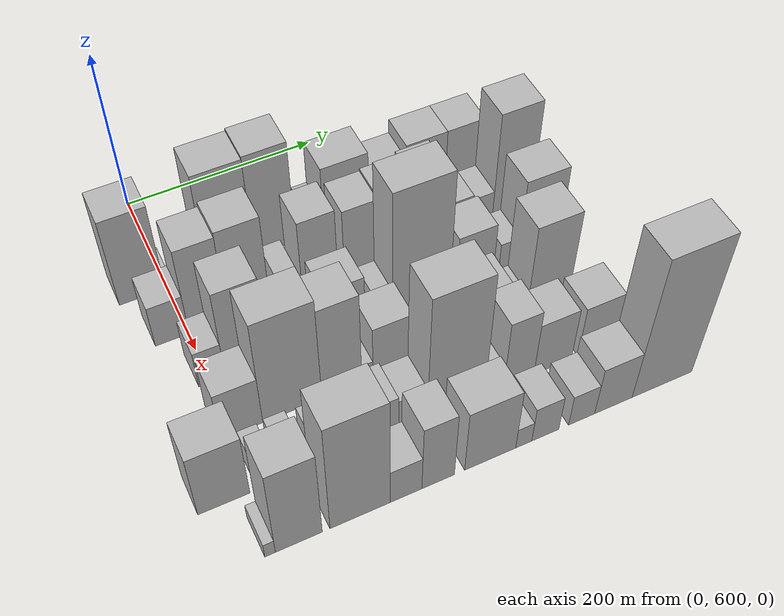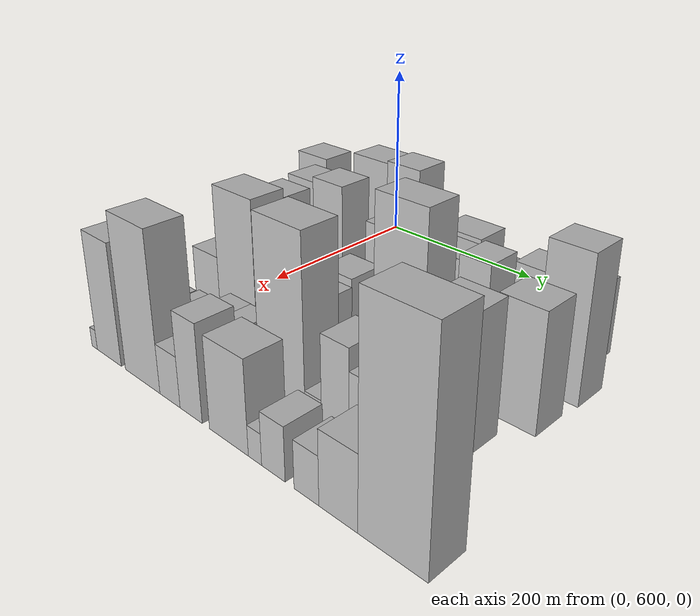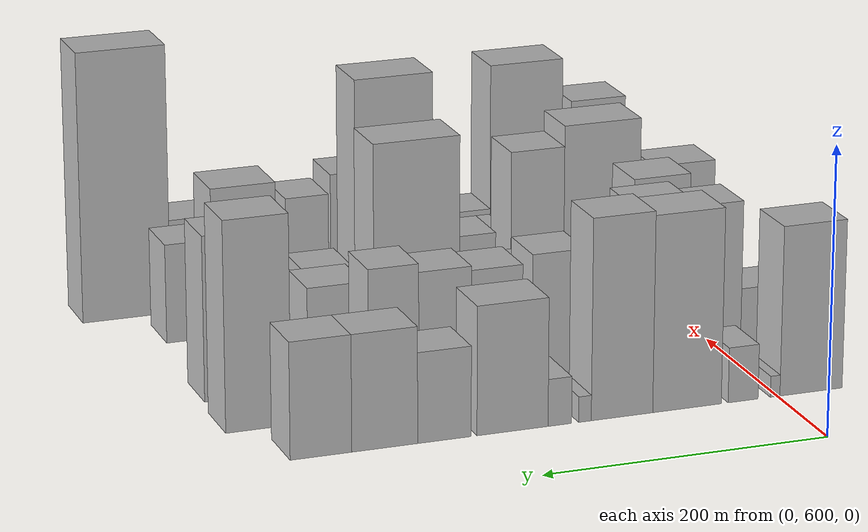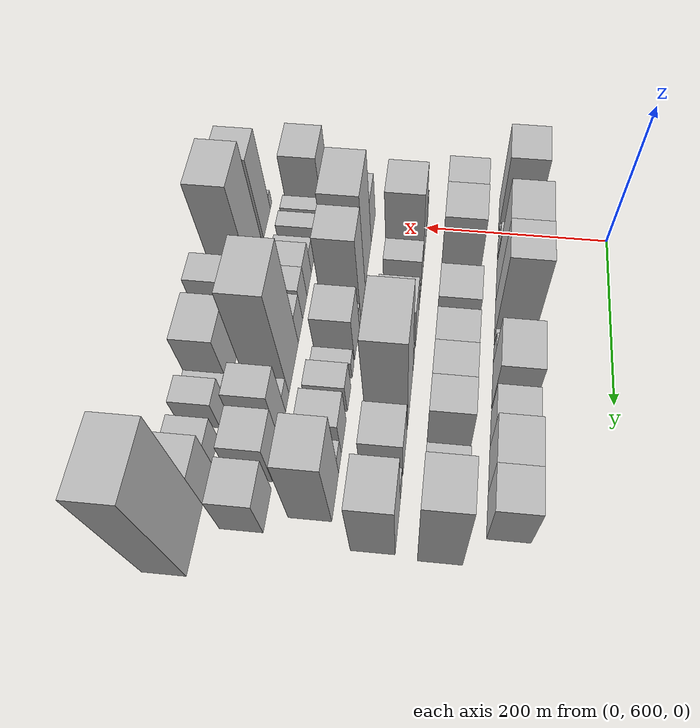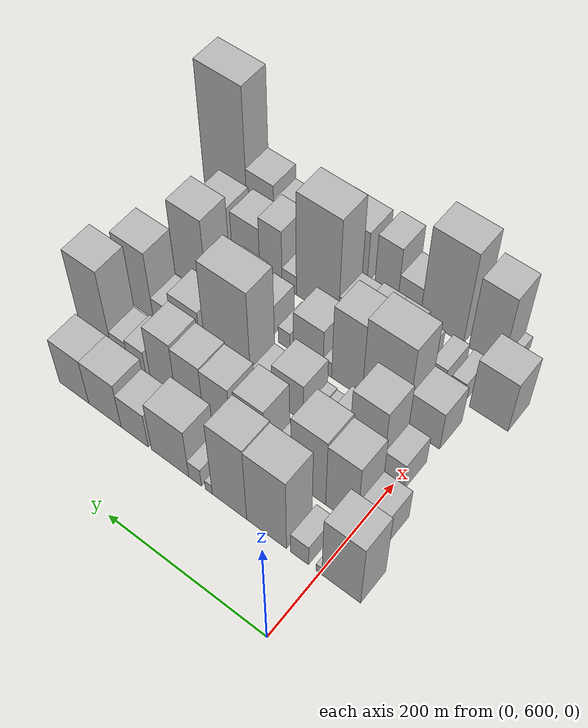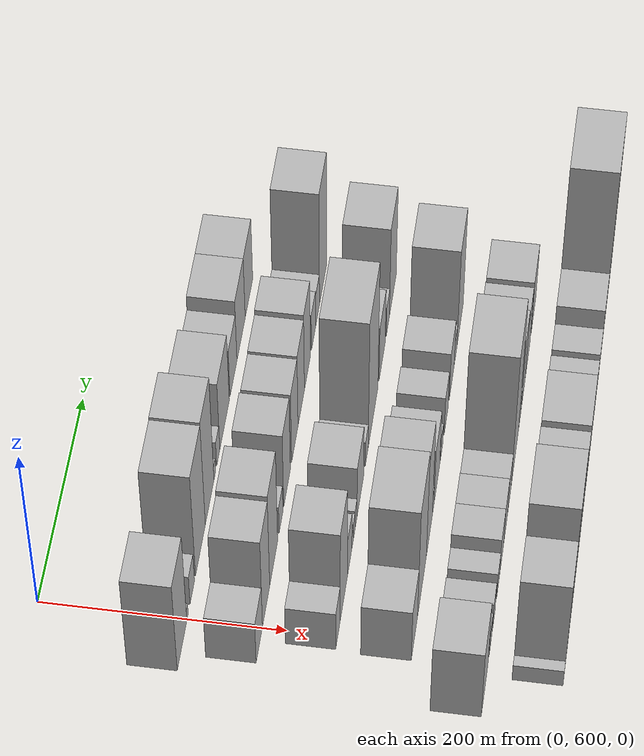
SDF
<sdf version="1.6">
 <world name="default">
  <model name="building_45">
   <static>1</static>
   <pose>100.0000 575.0505 0 0.000000 0.000000 0.000000</pose>
   <link name="link">
    <pose>0 0 60.00 0 0 0</pose>
    <collision name="collision"><geometry><box><size>40.0000 45.9709 120.0000</size></box></geometry></collision>
    <visual name="visual">
     <cast_shadows>0</cast_shadows>
     <geometry><box><size>40.0000 45.9709 120.0000</size></box></geometry>
     <material>
      <script>
       <uri>model://HANNAS_wall/materials/scripts</uri>
       <uri>model://HANNAS_wall/materials/textures</uri>
       <name>vrc/HANNAS_wall</name>
      </script>
     </material>
    </visual>
   </link>
  </model>
  <model name="building_46">
   <static>1</static>
   <pose>100.0000 601.5586 0 0.000000 0.000000 0.000000</pose>
   <link name="link">
    <pose>0 0 7.50 0 0 0</pose>
    <collision name="collision"><geometry><box><size>40.0000 7.0453 15.0000</size></box></geometry></collision>
    <visual name="visual">
     <cast_shadows>0</cast_shadows>
     <geometry><box><size>40.0000 7.0453 15.0000</size></box></geometry>
     <material>
      <script>
       <uri>model://HANNAS_wall/materials/scripts</uri>
       <uri>model://HANNAS_wall/materials/textures</uri>
       <name>vrc/HANNAS_wall</name>
      </script>
     </material>
    </visual>
   </link>
  </model>
  <model name="building_47">
   <static>1</static>
   <pose>100.0000 625.0130 0 0.000000 0.000000 0.000000</pose>
   <link name="link">
    <pose>0 0 19.50 0 0 0</pose>
    <collision name="collision"><geometry><box><size>40.0000 21.8635 39.0000</size></box></geometry></collision>
    <visual name="visual">
     <cast_shadows>0</cast_shadows>
     <geometry><box><size>40.0000 21.8635 39.0000</size></box></geometry>
     <material>
      <script>
       <uri>model://HANNAS_wall/materials/scripts</uri>
       <uri>model://HANNAS_wall/materials/textures</uri>
       <name>vrc/HANNAS_wall</name>
      </script>
     </material>
    </visual>
   </link>
  </model>
  <model name="building_48">
   <static>1</static>
   <pose>100.0000 665.7464 0 0.000000 0.000000 0.000000</pose>
   <link name="link">
    <pose>0 0 69.00 0 0 0</pose>
    <collision name="collision"><geometry><box><size>40.0000 49.6033 138.0000</size></box></geometry></collision>
    <visual name="visual">
     <cast_shadows>0</cast_shadows>
     <geometry><box><size>40.0000 49.6033 138.0000</size></box></geometry>
     <material>
      <script>
       <uri>model://HANNAS_wall/materials/scripts</uri>
       <uri>model://HANNAS_wall/materials/textures</uri>
       <name>vrc/HANNAS_wall</name>
      </script>
     </material>
    </visual>
   </link>
  </model>
  <model name="building_49">
   <static>1</static>
   <pose>100.0000 712.5473 0 0.000000 0.000000 0.000000</pose>
   <link name="link">
    <pose>0 0 70.50 0 0 0</pose>
    <collision name="collision"><geometry><box><size>40.0000 43.9984 141.0000</size></box></geometry></collision>
    <visual name="visual">
     <cast_shadows>0</cast_shadows>
     <geometry><box><size>40.0000 43.9984 141.0000</size></box></geometry>
     <material>
      <script>
       <uri>model://HANNAS_wall/materials/scripts</uri>
       <uri>model://HANNAS_wall/materials/textures</uri>
       <name>vrc/HANNAS_wall</name>
      </script>
     </material>
    </visual>
   </link>
  </model>
  <model name="building_50">
   <static>1</static>
   <pose>100.0000 739.0284 0 0.000000 0.000000 0.000000</pose>
   <link name="link">
    <pose>0 0 9.00 0 0 0</pose>
    <collision name="collision"><geometry><box><size>40.0000 8.9638 18.0000</size></box></geometry></collision>
    <visual name="visual">
     <cast_shadows>0</cast_shadows>
     <geometry><box><size>40.0000 8.9638 18.0000</size></box></geometry>
     <material>
      <script>
       <uri>model://HANNAS_wall/materials/scripts</uri>
       <uri>model://HANNAS_wall/materials/textures</uri>
       <name>vrc/HANNAS_wall</name>
      </script>
     </material>
    </visual>
   </link>
  </model>
  <model name="building_51">
   <static>1</static>
   <pose>100.0000 756.8381 0 0.000000 0.000000 0.000000</pose>
   <link name="link">
    <pose>0 0 16.50 0 0 0</pose>
    <collision name="collision"><geometry><box><size>40.0000 16.6556 33.0000</size></box></geometry></collision>
    <visual name="visual">
     <cast_shadows>0</cast_shadows>
     <geometry><box><size>40.0000 16.6556 33.0000</size></box></geometry>
     <material>
      <script>
       <uri>model://HANNAS_wall/materials/scripts</uri>
       <uri>model://HANNAS_wall/materials/textures</uri>
       <name>vrc/HANNAS_wall</name>
      </script>
     </material>
    </visual>
   </link>
  </model>
  <model name="building_52">
   <static>1</static>
   <pose>100.0000 790.1409 0 0.000000 0.000000 0.000000</pose>
   <link name="link">
    <pose>0 0 45.00 0 0 0</pose>
    <collision name="collision"><geometry><box><size>40.0000 49.9500 90.0000</size></box></geometry></collision>
    <visual name="visual">
     <cast_shadows>0</cast_shadows>
     <geometry><box><size>40.0000 49.9500 90.0000</size></box></geometry>
     <material>
      <script>
       <uri>model://HANNAS_wall/materials/scripts</uri>
       <uri>model://HANNAS_wall/materials/textures</uri>
       <name>vrc/HANNAS_wall</name>
      </script>
     </material>
    </visual>
   </link>
  </model>
  <model name="building_53">
   <static>1</static>
   <pose>100.0000 837.7092 0 0.000000 0.000000 0.000000</pose>
   <link name="link">
    <pose>0 0 31.50 0 0 0</pose>
    <collision name="collision"><geometry><box><size>40.0000 37.1866 63.0000</size></box></geometry></collision>
    <visual name="visual">
     <cast_shadows>0</cast_shadows>
     <geometry><box><size>40.0000 37.1866 63.0000</size></box></geometry>
     <material>
      <script>
       <uri>model://HANNAS_wall/materials/scripts</uri>
       <uri>model://HANNAS_wall/materials/textures</uri>
       <name>vrc/HANNAS_wall</name>
      </script>
     </material>
    </visual>
   </link>
  </model>
  <model name="building_54">
   <static>1</static>
   <pose>100.0000 878.9409 0 0.000000 0.000000 0.000000</pose>
   <link name="link">
    <pose>0 0 40.50 0 0 0</pose>
    <collision name="collision"><geometry><box><size>40.0000 45.2768 81.0000</size></box></geometry></collision>
    <visual name="visual">
     <cast_shadows>0</cast_shadows>
     <geometry><box><size>40.0000 45.2768 81.0000</size></box></geometry>
     <material>
      <script>
       <uri>model://HANNAS_wall/materials/scripts</uri>
       <uri>model://HANNAS_wall/materials/textures</uri>
       <name>vrc/HANNAS_wall</name>
      </script>
     </material>
    </visual>
   </link>
  </model>
  <model name="building_55">
   <static>1</static>
   <pose>100.0000 922.5653 0 0.000000 0.000000 0.000000</pose>
   <link name="link">
    <pose>0 0 40.50 0 0 0</pose>
    <collision name="collision"><geometry><box><size>40.0000 41.9720 81.0000</size></box></geometry></collision>
    <visual name="visual">
     <cast_shadows>0</cast_shadows>
     <geometry><box><size>40.0000 41.9720 81.0000</size></box></geometry>
     <material>
      <script>
       <uri>model://HANNAS_wall/materials/scripts</uri>
       <uri>model://HANNAS_wall/materials/textures</uri>
       <name>vrc/HANNAS_wall</name>
      </script>
     </material>
    </visual>
   </link>
  </model>
  <model name="building_101">
   <static>1</static>
   <pose>160.0000 584.2003 0 0.000000 0.000000 0.000000</pose>
   <link name="link">
    <pose>0 0 28.50 0 0 0</pose>
    <collision name="collision"><geometry><box><size>40.0000 33.4229 57.0000</size></box></geometry></collision>
    <visual name="visual">
     <cast_shadows>0</cast_shadows>
     <geometry><box><size>40.0000 33.4229 57.0000</size></box></geometry>
     <material>
      <script>
       <uri>model://HANNAS_wall/materials/scripts</uri>
       <uri>model://HANNAS_wall/materials/textures</uri>
       <name>vrc/HANNAS_wall</name>
      </script>
     </material>
    </visual>
   </link>
  </model>
  <model name="building_102">
   <static>1</static>
   <pose>160.0000 620.2321 0 0.000000 0.000000 0.000000</pose>
   <link name="link">
    <pose>0 0 60.00 0 0 0</pose>
    <collision name="collision"><geometry><box><size>40.0000 38.6406 120.0000</size></box></geometry></collision>
    <visual name="visual">
     <cast_shadows>0</cast_shadows>
     <geometry><box><size>40.0000 38.6406 120.0000</size></box></geometry>
     <material>
      <script>
       <uri>model://HANNAS_wall/materials/scripts</uri>
       <uri>model://HANNAS_wall/materials/textures</uri>
       <name>vrc/HANNAS_wall</name>
      </script>
     </material>
    </visual>
   </link>
  </model>
  <model name="building_103">
   <static>1</static>
   <pose>160.0000 661.0958 0 0.000000 0.000000 0.000000</pose>
   <link name="link">
    <pose>0 0 63.00 0 0 0</pose>
    <collision name="collision"><geometry><box><size>40.0000 43.0868 126.0000</size></box></geometry></collision>
    <visual name="visual">
     <cast_shadows>0</cast_shadows>
     <geometry><box><size>40.0000 43.0868 126.0000</size></box></geometry>
     <material>
      <script>
       <uri>model://HANNAS_wall/materials/scripts</uri>
       <uri>model://HANNAS_wall/materials/textures</uri>
       <name>vrc/HANNAS_wall</name>
      </script>
     </material>
    </visual>
   </link>
  </model>
  <model name="building_104">
   <static>1</static>
   <pose>160.0000 701.3302 0 0.000000 0.000000 0.000000</pose>
   <link name="link">
    <pose>0 0 18.00 0 0 0</pose>
    <collision name="collision"><geometry><box><size>40.0000 21.3820 36.0000</size></box></geometry></collision>
    <visual name="visual">
     <cast_shadows>0</cast_shadows>
     <geometry><box><size>40.0000 21.3820 36.0000</size></box></geometry>
     <material>
      <script>
       <uri>model://HANNAS_wall/materials/scripts</uri>
       <uri>model://HANNAS_wall/materials/textures</uri>
       <name>vrc/HANNAS_wall</name>
      </script>
     </material>
    </visual>
   </link>
  </model>
  <model name="building_105">
   <static>1</static>
   <pose>160.0000 734.8007 0 0.000000 0.000000 0.000000</pose>
   <link name="link">
    <pose>0 0 49.50 0 0 0</pose>
    <collision name="collision"><geometry><box><size>40.0000 37.5590 99.0000</size></box></geometry></collision>
    <visual name="visual">
     <cast_shadows>0</cast_shadows>
     <geometry><box><size>40.0000 37.5590 99.0000</size></box></geometry>
     <material>
      <script>
       <uri>model://HANNAS_wall/materials/scripts</uri>
       <uri>model://HANNAS_wall/materials/textures</uri>
       <name>vrc/HANNAS_wall</name>
      </script>
     </material>
    </visual>
   </link>
  </model>
  <model name="building_106">
   <static>1</static>
   <pose>160.0000 778.7399 0 0.000000 0.000000 0.000000</pose>
   <link name="link">
    <pose>0 0 46.50 0 0 0</pose>
    <collision name="collision"><geometry><box><size>40.0000 36.3193 93.0000</size></box></geometry></collision>
    <visual name="visual">
     <cast_shadows>0</cast_shadows>
     <geometry><box><size>40.0000 36.3193 93.0000</size></box></geometry>
     <material>
      <script>
       <uri>model://HANNAS_wall/materials/scripts</uri>
       <uri>model://HANNAS_wall/materials/textures</uri>
       <name>vrc/HANNAS_wall</name>
      </script>
     </material>
    </visual>
   </link>
  </model>
  <model name="building_107">
   <static>1</static>
   <pose>160.0000 815.5666 0 0.000000 0.000000 0.000000</pose>
   <link name="link">
    <pose>0 0 48.00 0 0 0</pose>
    <collision name="collision"><geometry><box><size>40.0000 37.3343 96.0000</size></box></geometry></collision>
    <visual name="visual">
     <cast_shadows>0</cast_shadows>
     <geometry><box><size>40.0000 37.3343 96.0000</size></box></geometry>
     <material>
      <script>
       <uri>model://HANNAS_wall/materials/scripts</uri>
       <uri>model://HANNAS_wall/materials/textures</uri>
       <name>vrc/HANNAS_wall</name>
      </script>
     </material>
    </visual>
   </link>
  </model>
  <model name="building_108">
   <static>1</static>
   <pose>160.0000 851.9119 0 0.000000 0.000000 0.000000</pose>
   <link name="link">
    <pose>0 0 51.00 0 0 0</pose>
    <collision name="collision"><geometry><box><size>40.0000 35.3563 102.0000</size></box></geometry></collision>
    <visual name="visual">
     <cast_shadows>0</cast_shadows>
     <geometry><box><size>40.0000 35.3563 102.0000</size></box></geometry>
     <material>
      <script>
       <uri>model://HANNAS_wall/materials/scripts</uri>
       <uri>model://HANNAS_wall/materials/textures</uri>
       <name>vrc/HANNAS_wall</name>
      </script>
     </material>
    </visual>
   </link>
  </model>
  <model name="building_109">
   <static>1</static>
   <pose>160.0000 888.2699 0 0.000000 0.000000 0.000000</pose>
   <link name="link">
    <pose>0 0 24.00 0 0 0</pose>
    <collision name="collision"><geometry><box><size>40.0000 25.3595 48.0000</size></box></geometry></collision>
    <visual name="visual">
     <cast_shadows>0</cast_shadows>
     <geometry><box><size>40.0000 25.3595 48.0000</size></box></geometry>
     <material>
      <script>
       <uri>model://HANNAS_wall/materials/scripts</uri>
       <uri>model://HANNAS_wall/materials/textures</uri>
       <name>vrc/HANNAS_wall</name>
      </script>
     </material>
    </visual>
   </link>
  </model>
  <model name="building_110">
   <static>1</static>
   <pose>160.0000 912.3625 0 0.000000 0.000000 0.000000</pose>
   <link name="link">
    <pose>0 0 21.00 0 0 0</pose>
    <collision name="collision"><geometry><box><size>40.0000 22.8259 42.0000</size></box></geometry></collision>
    <visual name="visual">
     <cast_shadows>0</cast_shadows>
     <geometry><box><size>40.0000 22.8259 42.0000</size></box></geometry>
     <material>
      <script>
       <uri>model://HANNAS_wall/materials/scripts</uri>
       <uri>model://HANNAS_wall/materials/textures</uri>
       <name>vrc/HANNAS_wall</name>
      </script>
     </material>
    </visual>
   </link>
  </model>
  <model name="building_111">
   <static>1</static>
   <pose>160.0000 946.2223 0 0.000000 0.000000 0.000000</pose>
   <link name="link">
    <pose>0 0 73.50 0 0 0</pose>
    <collision name="collision"><geometry><box><size>40.0000 44.8937 147.0000</size></box></geometry></collision>
    <visual name="visual">
     <cast_shadows>0</cast_shadows>
     <geometry><box><size>40.0000 44.8937 147.0000</size></box></geometry>
     <material>
      <script>
       <uri>model://HANNAS_wall/materials/scripts</uri>
       <uri>model://HANNAS_wall/materials/textures</uri>
       <name>vrc/HANNAS_wall</name>
      </script>
     </material>
    </visual>
   </link>
  </model>
  <model name="building_156">
   <static>1</static>
   <pose>220.0000 601.2476 0 0.000000 0.000000 0.000000</pose>
   <link name="link">
    <pose>0 0 25.50 0 0 0</pose>
    <collision name="collision"><geometry><box><size>40.0000 25.7378 51.0000</size></box></geometry></collision>
    <visual name="visual">
     <cast_shadows>0</cast_shadows>
     <geometry><box><size>40.0000 25.7378 51.0000</size></box></geometry>
     <material>
      <script>
       <uri>model://HANNAS_wall/materials/scripts</uri>
       <uri>model://HANNAS_wall/materials/textures</uri>
       <name>vrc/HANNAS_wall</name>
      </script>
     </material>
    </visual>
   </link>
  </model>
  <model name="building_157">
   <static>1</static>
   <pose>220.0000 635.1200 0 0.000000 0.000000 0.000000</pose>
   <link name="link">
    <pose>0 0 61.50 0 0 0</pose>
    <collision name="collision"><geometry><box><size>40.0000 42.0071 123.0000</size></box></geometry></collision>
    <visual name="visual">
     <cast_shadows>0</cast_shadows>
     <geometry><box><size>40.0000 42.0071 123.0000</size></box></geometry>
     <material>
      <script>
       <uri>model://HANNAS_wall/materials/scripts</uri>
       <uri>model://HANNAS_wall/materials/textures</uri>
       <name>vrc/HANNAS_wall</name>
      </script>
     </material>
    </visual>
   </link>
  </model>
  <model name="building_158">
   <static>1</static>
   <pose>220.0000 669.6927 0 0.000000 0.000000 0.000000</pose>
   <link name="link">
    <pose>0 0 25.50 0 0 0</pose>
    <collision name="collision"><geometry><box><size>40.0000 27.1383 51.0000</size></box></geometry></collision>
    <visual name="visual">
     <cast_shadows>0</cast_shadows>
     <geometry><box><size>40.0000 27.1383 51.0000</size></box></geometry>
     <material>
      <script>
       <uri>model://HANNAS_wall/materials/scripts</uri>
       <uri>model://HANNAS_wall/materials/textures</uri>
       <name>vrc/HANNAS_wall</name>
      </script>
     </material>
    </visual>
   </link>
  </model>
  <model name="building_159">
   <static>1</static>
   <pose>220.0000 687.0467 0 0.000000 0.000000 0.000000</pose>
   <link name="link">
    <pose>0 0 9.00 0 0 0</pose>
    <collision name="collision"><geometry><box><size>40.0000 7.5697 18.0000</size></box></geometry></collision>
    <visual name="visual">
     <cast_shadows>0</cast_shadows>
     <geometry><box><size>40.0000 7.5697 18.0000</size></box></geometry>
     <material>
      <script>
       <uri>model://HANNAS_wall/materials/scripts</uri>
       <uri>model://HANNAS_wall/materials/textures</uri>
       <name>vrc/HANNAS_wall</name>
      </script>
     </material>
    </visual>
   </link>
  </model>
  <model name="building_160">
   <static>1</static>
   <pose>220.0000 696.1943 0 0.000000 0.000000 0.000000</pose>
   <link name="link">
    <pose>0 0 12.00 0 0 0</pose>
    <collision name="collision"><geometry><box><size>40.0000 10.7255 24.0000</size></box></geometry></collision>
    <visual name="visual">
     <cast_shadows>0</cast_shadows>
     <geometry><box><size>40.0000 10.7255 24.0000</size></box></geometry>
     <material>
      <script>
       <uri>model://HANNAS_wall/materials/scripts</uri>
       <uri>model://HANNAS_wall/materials/textures</uri>
       <name>vrc/HANNAS_wall</name>
      </script>
     </material>
    </visual>
   </link>
  </model>
  <model name="building_161">
   <static>1</static>
   <pose>220.0000 707.7963 0 0.000000 0.000000 0.000000</pose>
   <link name="link">
    <pose>0 0 13.50 0 0 0</pose>
    <collision name="collision"><geometry><box><size>40.0000 12.4785 27.0000</size></box></geometry></collision>
    <visual name="visual">
     <cast_shadows>0</cast_shadows>
     <geometry><box><size>40.0000 12.4785 27.0000</size></box></geometry>
     <material>
      <script>
       <uri>model://HANNAS_wall/materials/scripts</uri>
       <uri>model://HANNAS_wall/materials/textures</uri>
       <name>vrc/HANNAS_wall</name>
      </script>
     </material>
    </visual>
   </link>
  </model>
  <model name="building_162">
   <static>1</static>
   <pose>220.0000 734.5098 0 0.000000 0.000000 0.000000</pose>
   <link name="link">
    <pose>0 0 34.50 0 0 0</pose>
    <collision name="collision"><geometry><box><size>40.0000 40.9485 69.0000</size></box></geometry></collision>
    <visual name="visual">
     <cast_shadows>0</cast_shadows>
     <geometry><box><size>40.0000 40.9485 69.0000</size></box></geometry>
     <material>
      <script>
       <uri>model://HANNAS_wall/materials/scripts</uri>
       <uri>model://HANNAS_wall/materials/textures</uri>
       <name>vrc/HANNAS_wall</name>
      </script>
     </material>
    </visual>
   </link>
  </model>
  <model name="building_163">
   <static>1</static>
   <pose>220.0000 774.1803 0 0.000000 0.000000 0.000000</pose>
   <link name="link">
    <pose>0 0 16.50 0 0 0</pose>
    <collision name="collision"><geometry><box><size>40.0000 18.3925 33.0000</size></box></geometry></collision>
    <visual name="visual">
     <cast_shadows>0</cast_shadows>
     <geometry><box><size>40.0000 18.3925 33.0000</size></box></geometry>
     <material>
      <script>
       <uri>model://HANNAS_wall/materials/scripts</uri>
       <uri>model://HANNAS_wall/materials/textures</uri>
       <name>vrc/HANNAS_wall</name>
      </script>
     </material>
    </visual>
   </link>
  </model>
  <model name="building_164">
   <static>1</static>
   <pose>220.0000 814.2406 0 0.000000 0.000000 0.000000</pose>
   <link name="link">
    <pose>0 0 84.00 0 0 0</pose>
    <collision name="collision"><geometry><box><size>40.0000 61.7280 168.0000</size></box></geometry></collision>
    <visual name="visual">
     <cast_shadows>0</cast_shadows>
     <geometry><box><size>40.0000 61.7280 168.0000</size></box></geometry>
     <material>
      <script>
       <uri>model://HANNAS_wall/materials/scripts</uri>
       <uri>model://HANNAS_wall/materials/textures</uri>
       <name>vrc/HANNAS_wall</name>
      </script>
     </material>
    </visual>
   </link>
  </model>
  <model name="building_165">
   <static>1</static>
   <pose>220.0000 872.2952 0 0.000000 0.000000 0.000000</pose>
   <link name="link">
    <pose>0 0 36.00 0 0 0</pose>
    <collision name="collision"><geometry><box><size>40.0000 40.3812 72.0000</size></box></geometry></collision>
    <visual name="visual">
     <cast_shadows>0</cast_shadows>
     <geometry><box><size>40.0000 40.3812 72.0000</size></box></geometry>
     <material>
      <script>
       <uri>model://HANNAS_wall/materials/scripts</uri>
       <uri>model://HANNAS_wall/materials/textures</uri>
       <name>vrc/HANNAS_wall</name>
      </script>
     </material>
    </visual>
   </link>
  </model>
  <model name="building_166">
   <static>1</static>
   <pose>220.0000 908.9685 0 0.000000 0.000000 0.000000</pose>
   <link name="link">
    <pose>0 0 19.50 0 0 0</pose>
    <collision name="collision"><geometry><box><size>40.0000 20.9654 39.0000</size></box></geometry></collision>
    <visual name="visual">
     <cast_shadows>0</cast_shadows>
     <geometry><box><size>40.0000 20.9654 39.0000</size></box></geometry>
     <material>
      <script>
       <uri>model://HANNAS_wall/materials/scripts</uri>
       <uri>model://HANNAS_wall/materials/textures</uri>
       <name>vrc/HANNAS_wall</name>
      </script>
     </material>
    </visual>
   </link>
  </model>
  <model name="building_167">
   <static>1</static>
   <pose>220.0000 942.3035 0 0.000000 0.000000 0.000000</pose>
   <link name="link">
    <pose>0 0 58.50 0 0 0</pose>
    <collision name="collision"><geometry><box><size>40.0000 45.7048 117.0000</size></box></geometry></collision>
    <visual name="visual">
     <cast_shadows>0</cast_shadows>
     <geometry><box><size>40.0000 45.7048 117.0000</size></box></geometry>
     <material>
      <script>
       <uri>model://HANNAS_wall/materials/scripts</uri>
       <uri>model://HANNAS_wall/materials/textures</uri>
       <name>vrc/HANNAS_wall</name>
      </script>
     </material>
    </visual>
   </link>
  </model>
  <model name="building_213">
   <static>1</static>
   <pose>280.0000 606.4868 0 0.000000 0.000000 0.000000</pose>
   <link name="link">
    <pose>0 0 34.50 0 0 0</pose>
    <collision name="collision"><geometry><box><size>40.0000 40.2828 69.0000</size></box></geometry></collision>
    <visual name="visual">
     <cast_shadows>0</cast_shadows>
     <geometry><box><size>40.0000 40.2828 69.0000</size></box></geometry>
     <material>
      <script>
       <uri>model://HANNAS_wall/materials/scripts</uri>
       <uri>model://HANNAS_wall/materials/textures</uri>
       <name>vrc/HANNAS_wall</name>
      </script>
     </material>
    </visual>
   </link>
  </model>
  <model name="building_214">
   <static>1</static>
   <pose>280.0000 655.2815 0 0.000000 0.000000 0.000000</pose>
   <link name="link">
    <pose>0 0 73.50 0 0 0</pose>
    <collision name="collision"><geometry><box><size>40.0000 57.3067 147.0000</size></box></geometry></collision>
    <visual name="visual">
     <cast_shadows>0</cast_shadows>
     <geometry><box><size>40.0000 57.3067 147.0000</size></box></geometry>
     <material>
      <script>
       <uri>model://HANNAS_wall/materials/scripts</uri>
       <uri>model://HANNAS_wall/materials/textures</uri>
       <name>vrc/HANNAS_wall</name>
      </script>
     </material>
    </visual>
   </link>
  </model>
  <model name="building_215">
   <static>1</static>
   <pose>280.0000 703.7542 0 0.000000 0.000000 0.000000</pose>
   <link name="link">
    <pose>0 0 66.00 0 0 0</pose>
    <collision name="collision"><geometry><box><size>40.0000 39.6386 132.0000</size></box></geometry></collision>
    <visual name="visual">
     <cast_shadows>0</cast_shadows>
     <geometry><box><size>40.0000 39.6386 132.0000</size></box></geometry>
     <material>
      <script>
       <uri>model://HANNAS_wall/materials/scripts</uri>
       <uri>model://HANNAS_wall/materials/textures</uri>
       <name>vrc/HANNAS_wall</name>
      </script>
     </material>
    </visual>
   </link>
  </model>
  <model name="building_216">
   <static>1</static>
   <pose>280.0000 729.2644 0 0.000000 0.000000 0.000000</pose>
   <link name="link">
    <pose>0 0 13.50 0 0 0</pose>
    <collision name="collision"><geometry><box><size>40.0000 11.3819 27.0000</size></box></geometry></collision>
    <visual name="visual">
     <cast_shadows>0</cast_shadows>
     <geometry><box><size>40.0000 11.3819 27.0000</size></box></geometry>
     <material>
      <script>
       <uri>model://HANNAS_wall/materials/scripts</uri>
       <uri>model://HANNAS_wall/materials/textures</uri>
       <name>vrc/HANNAS_wall</name>
      </script>
     </material>
    </visual>
   </link>
  </model>
  <model name="building_217">
   <static>1</static>
   <pose>280.0000 754.8689 0 0.000000 0.000000 0.000000</pose>
   <link name="link">
    <pose>0 0 37.50 0 0 0</pose>
    <collision name="collision"><geometry><box><size>40.0000 39.8271 75.0000</size></box></geometry></collision>
    <visual name="visual">
     <cast_shadows>0</cast_shadows>
     <geometry><box><size>40.0000 39.8271 75.0000</size></box></geometry>
     <material>
      <script>
       <uri>model://HANNAS_wall/materials/scripts</uri>
       <uri>model://HANNAS_wall/materials/textures</uri>
       <name>vrc/HANNAS_wall</name>
      </script>
     </material>
    </visual>
   </link>
  </model>
  <model name="building_218">
   <static>1</static>
   <pose>280.0000 786.7892 0 0.000000 0.000000 0.000000</pose>
   <link name="link">
    <pose>0 0 15.00 0 0 0</pose>
    <collision name="collision"><geometry><box><size>40.0000 16.0133 30.0000</size></box></geometry></collision>
    <visual name="visual">
     <cast_shadows>0</cast_shadows>
     <geometry><box><size>40.0000 16.0133 30.0000</size></box></geometry>
     <material>
      <script>
       <uri>model://HANNAS_wall/materials/scripts</uri>
       <uri>model://HANNAS_wall/materials/textures</uri>
       <name>vrc/HANNAS_wall</name>
      </script>
     </material>
    </visual>
   </link>
  </model>
  <model name="building_219">
   <static>1</static>
   <pose>280.0000 818.2120 0 0.000000 0.000000 0.000000</pose>
   <link name="link">
    <pose>0 0 25.50 0 0 0</pose>
    <collision name="collision"><geometry><box><size>40.0000 26.8323 51.0000</size></box></geometry></collision>
    <visual name="visual">
     <cast_shadows>0</cast_shadows>
     <geometry><box><size>40.0000 26.8323 51.0000</size></box></geometry>
     <material>
      <script>
       <uri>model://HANNAS_wall/materials/scripts</uri>
       <uri>model://HANNAS_wall/materials/textures</uri>
       <name>vrc/HANNAS_wall</name>
      </script>
     </material>
    </visual>
   </link>
  </model>
  <model name="building_220">
   <static>1</static>
   <pose>280.0000 858.1399 0 0.000000 0.000000 0.000000</pose>
   <link name="link">
    <pose>0 0 31.50 0 0 0</pose>
    <collision name="collision"><geometry><box><size>40.0000 35.0236 63.0000</size></box></geometry></collision>
    <visual name="visual">
     <cast_shadows>0</cast_shadows>
     <geometry><box><size>40.0000 35.0236 63.0000</size></box></geometry>
     <material>
      <script>
       <uri>model://HANNAS_wall/materials/scripts</uri>
       <uri>model://HANNAS_wall/materials/textures</uri>
       <name>vrc/HANNAS_wall</name>
      </script>
     </material>
    </visual>
   </link>
  </model>
  <model name="building_221">
   <static>1</static>
   <pose>280.0000 885.3146 0 0.000000 0.000000 0.000000</pose>
   <link name="link">
    <pose>0 0 16.50 0 0 0</pose>
    <collision name="collision"><geometry><box><size>40.0000 19.3259 33.0000</size></box></geometry></collision>
    <visual name="visual">
     <cast_shadows>0</cast_shadows>
     <geometry><box><size>40.0000 19.3259 33.0000</size></box></geometry>
     <material>
      <script>
       <uri>model://HANNAS_wall/materials/scripts</uri>
       <uri>model://HANNAS_wall/materials/textures</uri>
       <name>vrc/HANNAS_wall</name>
      </script>
     </material>
    </visual>
   </link>
  </model>
  <model name="building_222">
   <static>1</static>
   <pose>280.0000 917.9671 0 0.000000 0.000000 0.000000</pose>
   <link name="link">
    <pose>0 0 64.50 0 0 0</pose>
    <collision name="collision"><geometry><box><size>40.0000 45.9790 129.0000</size></box></geometry></collision>
    <visual name="visual">
     <cast_shadows>0</cast_shadows>
     <geometry><box><size>40.0000 45.9790 129.0000</size></box></geometry>
     <material>
      <script>
       <uri>model://HANNAS_wall/materials/scripts</uri>
       <uri>model://HANNAS_wall/materials/textures</uri>
       <name>vrc/HANNAS_wall</name>
      </script>
     </material>
    </visual>
   </link>
  </model>
  <model name="building_267">
   <static>1</static>
   <pose>340.0000 566.8701 0 0.000000 0.000000 0.000000</pose>
   <link name="link">
    <pose>0 0 45.00 0 0 0</pose>
    <collision name="collision"><geometry><box><size>40.0000 47.3413 90.0000</size></box></geometry></collision>
    <visual name="visual">
     <cast_shadows>0</cast_shadows>
     <geometry><box><size>40.0000 47.3413 90.0000</size></box></geometry>
     <material>
      <script>
       <uri>model://HANNAS_wall/materials/scripts</uri>
       <uri>model://HANNAS_wall/materials/textures</uri>
       <name>vrc/HANNAS_wall</name>
      </script>
     </material>
    </visual>
   </link>
  </model>
  <model name="building_268">
   <static>1</static>
   <pose>340.0000 606.5884 0 0.000000 0.000000 0.000000</pose>
   <link name="link">
    <pose>0 0 18.00 0 0 0</pose>
    <collision name="collision"><geometry><box><size>40.0000 18.0953 36.0000</size></box></geometry></collision>
    <visual name="visual">
     <cast_shadows>0</cast_shadows>
     <geometry><box><size>40.0000 18.0953 36.0000</size></box></geometry>
     <material>
      <script>
       <uri>model://HANNAS_wall/materials/scripts</uri>
       <uri>model://HANNAS_wall/materials/textures</uri>
       <name>vrc/HANNAS_wall</name>
      </script>
     </material>
    </visual>
   </link>
  </model>
  <model name="building_269">
   <static>1</static>
   <pose>340.0000 631.7750 0 0.000000 0.000000 0.000000</pose>
   <link name="link">
    <pose>0 0 19.50 0 0 0</pose>
    <collision name="collision"><geometry><box><size>40.0000 20.2778 39.0000</size></box></geometry></collision>
    <visual name="visual">
     <cast_shadows>0</cast_shadows>
     <geometry><box><size>40.0000 20.2778 39.0000</size></box></geometry>
     <material>
      <script>
       <uri>model://HANNAS_wall/materials/scripts</uri>
       <uri>model://HANNAS_wall/materials/textures</uri>
       <name>vrc/HANNAS_wall</name>
      </script>
     </material>
    </visual>
   </link>
  </model>
  <model name="building_270">
   <static>1</static>
   <pose>340.0000 662.1217 0 0.000000 0.000000 0.000000</pose>
   <link name="link">
    <pose>0 0 18.00 0 0 0</pose>
    <collision name="collision"><geometry><box><size>40.0000 20.4158 36.0000</size></box></geometry></collision>
    <visual name="visual">
     <cast_shadows>0</cast_shadows>
     <geometry><box><size>40.0000 20.4158 36.0000</size></box></geometry>
     <material>
      <script>
       <uri>model://HANNAS_wall/materials/scripts</uri>
       <uri>model://HANNAS_wall/materials/textures</uri>
       <name>vrc/HANNAS_wall</name>
      </script>
     </material>
    </visual>
   </link>
  </model>
  <model name="building_271">
   <static>1</static>
   <pose>340.0000 687.4185 0 0.000000 0.000000 0.000000</pose>
   <link name="link">
    <pose>0 0 27.00 0 0 0</pose>
    <collision name="collision"><geometry><box><size>40.0000 30.1778 54.0000</size></box></geometry></collision>
    <visual name="visual">
     <cast_shadows>0</cast_shadows>
     <geometry><box><size>40.0000 30.1778 54.0000</size></box></geometry>
     <material>
      <script>
       <uri>model://HANNAS_wall/materials/scripts</uri>
       <uri>model://HANNAS_wall/materials/textures</uri>
       <name>vrc/HANNAS_wall</name>
      </script>
     </material>
    </visual>
   </link>
  </model>
  <model name="building_272">
   <static>1</static>
   <pose>340.0000 717.0819 0 0.000000 0.000000 0.000000</pose>
   <link name="link">
    <pose>0 0 27.00 0 0 0</pose>
    <collision name="collision"><geometry><box><size>40.0000 29.1489 54.0000</size></box></geometry></collision>
    <visual name="visual">
     <cast_shadows>0</cast_shadows>
     <geometry><box><size>40.0000 29.1489 54.0000</size></box></geometry>
     <material>
      <script>
       <uri>model://HANNAS_wall/materials/scripts</uri>
       <uri>model://HANNAS_wall/materials/textures</uri>
       <name>vrc/HANNAS_wall</name>
      </script>
     </material>
    </visual>
   </link>
  </model>
  <model name="building_273">
   <static>1</static>
   <pose>340.0000 745.7728 0 0.000000 0.000000 0.000000</pose>
   <link name="link">
    <pose>0 0 24.00 0 0 0</pose>
    <collision name="collision"><geometry><box><size>40.0000 28.2330 48.0000</size></box></geometry></collision>
    <visual name="visual">
     <cast_shadows>0</cast_shadows>
     <geometry><box><size>40.0000 28.2330 48.0000</size></box></geometry>
     <material>
      <script>
       <uri>model://HANNAS_wall/materials/scripts</uri>
       <uri>model://HANNAS_wall/materials/textures</uri>
       <name>vrc/HANNAS_wall</name>
      </script>
     </material>
    </visual>
   </link>
  </model>
  <model name="building_274">
   <static>1</static>
   <pose>340.0000 788.8894 0 0.000000 0.000000 0.000000</pose>
   <link name="link">
    <pose>0 0 88.50 0 0 0</pose>
    <collision name="collision"><geometry><box><size>40.0000 58.0000 177.0000</size></box></geometry></collision>
    <visual name="visual">
     <cast_shadows>0</cast_shadows>
     <geometry><box><size>40.0000 58.0000 177.0000</size></box></geometry>
     <material>
      <script>
       <uri>model://HANNAS_wall/materials/scripts</uri>
       <uri>model://HANNAS_wall/materials/textures</uri>
       <name>vrc/HANNAS_wall</name>
      </script>
     </material>
    </visual>
   </link>
  </model>
  <model name="building_275">
   <static>1</static>
   <pose>340.0000 827.7532 0 0.000000 0.000000 0.000000</pose>
   <link name="link">
    <pose>0 0 16.50 0 0 0</pose>
    <collision name="collision"><geometry><box><size>40.0000 19.7277 33.0000</size></box></geometry></collision>
    <visual name="visual">
     <cast_shadows>0</cast_shadows>
     <geometry><box><size>40.0000 19.7277 33.0000</size></box></geometry>
     <material>
      <script>
       <uri>model://HANNAS_wall/materials/scripts</uri>
       <uri>model://HANNAS_wall/materials/textures</uri>
       <name>vrc/HANNAS_wall</name>
      </script>
     </material>
    </visual>
   </link>
  </model>
  <model name="building_276">
   <static>1</static>
   <pose>340.0000 853.3518 0 0.000000 0.000000 0.000000</pose>
   <link name="link">
    <pose>0 0 48.00 0 0 0</pose>
    <collision name="collision"><geometry><box><size>40.0000 31.4696 96.0000</size></box></geometry></collision>
    <visual name="visual">
     <cast_shadows>0</cast_shadows>
     <geometry><box><size>40.0000 31.4696 96.0000</size></box></geometry>
     <material>
      <script>
       <uri>model://HANNAS_wall/materials/scripts</uri>
       <uri>model://HANNAS_wall/materials/textures</uri>
       <name>vrc/HANNAS_wall</name>
      </script>
     </material>
    </visual>
   </link>
  </model>
  <model name="building_277">
   <static>1</static>
   <pose>340.0000 888.9967 0 0.000000 0.000000 0.000000</pose>
   <link name="link">
    <pose>0 0 37.50 0 0 0</pose>
    <collision name="collision"><geometry><box><size>40.0000 39.8201 75.0000</size></box></geometry></collision>
    <visual name="visual">
     <cast_shadows>0</cast_shadows>
     <geometry><box><size>40.0000 39.8201 75.0000</size></box></geometry>
     <material>
      <script>
       <uri>model://HANNAS_wall/materials/scripts</uri>
       <uri>model://HANNAS_wall/materials/textures</uri>
       <name>vrc/HANNAS_wall</name>
      </script>
     </material>
    </visual>
   </link>
  </model>
  <model name="building_278">
   <static>1</static>
   <pose>340.0000 936.3727 0 0.000000 0.000000 0.000000</pose>
   <link name="link">
    <pose>0 0 36.00 0 0 0</pose>
    <collision name="collision"><geometry><box><size>40.0000 40.9318 72.0000</size></box></geometry></collision>
    <visual name="visual">
     <cast_shadows>0</cast_shadows>
     <geometry><box><size>40.0000 40.9318 72.0000</size></box></geometry>
     <material>
      <script>
       <uri>model://HANNAS_wall/materials/scripts</uri>
       <uri>model://HANNAS_wall/materials/textures</uri>
       <name>vrc/HANNAS_wall</name>
      </script>
     </material>
    </visual>
   </link>
  </model>
  <model name="building_325">
   <static>1</static>
   <pose>400.0000 584.5042 0 0.000000 0.000000 0.000000</pose>
   <link name="link">
    <pose>0 0 10.50 0 0 0</pose>
    <collision name="collision"><geometry><box><size>40.0000 9.5062 21.0000</size></box></geometry></collision>
    <visual name="visual">
     <cast_shadows>0</cast_shadows>
     <geometry><box><size>40.0000 9.5062 21.0000</size></box></geometry>
     <material>
      <script>
       <uri>model://HANNAS_wall/materials/scripts</uri>
       <uri>model://HANNAS_wall/materials/textures</uri>
       <name>vrc/HANNAS_wall</name>
      </script>
     </material>
    </visual>
   </link>
  </model>
  <model name="building_326">
   <static>1</static>
   <pose>400.0000 610.4098 0 0.000000 0.000000 0.000000</pose>
   <link name="link">
    <pose>0 0 63.00 0 0 0</pose>
    <collision name="collision"><geometry><box><size>40.0000 42.3051 126.0000</size></box></geometry></collision>
    <visual name="visual">
     <cast_shadows>0</cast_shadows>
     <geometry><box><size>40.0000 42.3051 126.0000</size></box></geometry>
     <material>
      <script>
       <uri>model://HANNAS_wall/materials/scripts</uri>
       <uri>model://HANNAS_wall/materials/textures</uri>
       <name>vrc/HANNAS_wall</name>
      </script>
     </material>
    </visual>
   </link>
  </model>
  <model name="building_327">
   <static>1</static>
   <pose>400.0000 666.4284 0 0.000000 0.000000 0.000000</pose>
   <link name="link">
    <pose>0 0 79.50 0 0 0</pose>
    <collision name="collision"><geometry><box><size>40.0000 55.7320 159.0000</size></box></geometry></collision>
    <visual name="visual">
     <cast_shadows>0</cast_shadows>
     <geometry><box><size>40.0000 55.7320 159.0000</size></box></geometry>
     <material>
      <script>
       <uri>model://HANNAS_wall/materials/scripts</uri>
       <uri>model://HANNAS_wall/materials/textures</uri>
       <name>vrc/HANNAS_wall</name>
      </script>
     </material>
    </visual>
   </link>
  </model>
  <model name="building_328">
   <static>1</static>
   <pose>400.0000 709.3993 0 0.000000 0.000000 0.000000</pose>
   <link name="link">
    <pose>0 0 25.50 0 0 0</pose>
    <collision name="collision"><geometry><box><size>40.0000 30.2098 51.0000</size></box></geometry></collision>
    <visual name="visual">
     <cast_shadows>0</cast_shadows>
     <geometry><box><size>40.0000 30.2098 51.0000</size></box></geometry>
     <material>
      <script>
       <uri>model://HANNAS_wall/materials/scripts</uri>
       <uri>model://HANNAS_wall/materials/textures</uri>
       <name>vrc/HANNAS_wall</name>
      </script>
     </material>
    </visual>
   </link>
  </model>
  <model name="building_329">
   <static>1</static>
   <pose>400.0000 740.2246 0 0.000000 0.000000 0.000000</pose>
   <link name="link">
    <pose>0 0 48.00 0 0 0</pose>
    <collision name="collision"><geometry><box><size>40.0000 31.4408 96.0000</size></box></geometry></collision>
    <visual name="visual">
     <cast_shadows>0</cast_shadows>
     <geometry><box><size>40.0000 31.4408 96.0000</size></box></geometry>
     <material>
      <script>
       <uri>model://HANNAS_wall/materials/scripts</uri>
       <uri>model://HANNAS_wall/materials/textures</uri>
       <name>vrc/HANNAS_wall</name>
      </script>
     </material>
    </visual>
   </link>
  </model>
  <model name="building_330">
   <static>1</static>
   <pose>400.0000 791.1634 0 0.000000 0.000000 0.000000</pose>
   <link name="link">
    <pose>0 0 45.00 0 0 0</pose>
    <collision name="collision"><geometry><box><size>40.0000 50.4367 90.0000</size></box></geometry></collision>
    <visual name="visual">
     <cast_shadows>0</cast_shadows>
     <geometry><box><size>40.0000 50.4367 90.0000</size></box></geometry>
     <material>
      <script>
       <uri>model://HANNAS_wall/materials/scripts</uri>
       <uri>model://HANNAS_wall/materials/textures</uri>
       <name>vrc/HANNAS_wall</name>
      </script>
     </material>
    </visual>
   </link>
  </model>
  <model name="building_331">
   <static>1</static>
   <pose>400.0000 824.4983 0 0.000000 0.000000 0.000000</pose>
   <link name="link">
    <pose>0 0 15.00 0 0 0</pose>
    <collision name="collision"><geometry><box><size>40.0000 16.2331 30.0000</size></box></geometry></collision>
    <visual name="visual">
     <cast_shadows>0</cast_shadows>
     <geometry><box><size>40.0000 16.2331 30.0000</size></box></geometry>
     <material>
      <script>
       <uri>model://HANNAS_wall/materials/scripts</uri>
       <uri>model://HANNAS_wall/materials/textures</uri>
       <name>vrc/HANNAS_wall</name>
      </script>
     </material>
    </visual>
   </link>
  </model>
  <model name="building_332">
   <static>1</static>
   <pose>400.0000 846.3669 0 0.000000 0.000000 0.000000</pose>
   <link name="link">
    <pose>0 0 25.50 0 0 0</pose>
    <collision name="collision"><geometry><box><size>40.0000 27.5040 51.0000</size></box></geometry></collision>
    <visual name="visual">
     <cast_shadows>0</cast_shadows>
     <geometry><box><size>40.0000 27.5040 51.0000</size></box></geometry>
     <material>
      <script>
       <uri>model://HANNAS_wall/materials/scripts</uri>
       <uri>model://HANNAS_wall/materials/textures</uri>
       <name>vrc/HANNAS_wall</name>
      </script>
     </material>
    </visual>
   </link>
  </model>
  <model name="building_333">
   <static>1</static>
   <pose>400.0000 883.6117 0 0.000000 0.000000 0.000000</pose>
   <link name="link">
    <pose>0 0 22.50 0 0 0</pose>
    <collision name="collision"><geometry><box><size>40.0000 26.9856 45.0000</size></box></geometry></collision>
    <visual name="visual">
     <cast_shadows>0</cast_shadows>
     <geometry><box><size>40.0000 26.9856 45.0000</size></box></geometry>
     <material>
      <script>
       <uri>model://HANNAS_wall/materials/scripts</uri>
       <uri>model://HANNAS_wall/materials/textures</uri>
       <name>vrc/HANNAS_wall</name>
      </script>
     </material>
    </visual>
   </link>
  </model>
  <model name="building_334">
   <static>1</static>
   <pose>400.0000 916.8536 0 0.000000 0.000000 0.000000</pose>
   <link name="link">
    <pose>0 0 34.50 0 0 0</pose>
    <collision name="collision"><geometry><box><size>40.0000 39.4980 69.0000</size></box></geometry></collision>
    <visual name="visual">
     <cast_shadows>0</cast_shadows>
     <geometry><box><size>40.0000 39.4980 69.0000</size></box></geometry>
     <material>
      <script>
       <uri>model://HANNAS_wall/materials/scripts</uri>
       <uri>model://HANNAS_wall/materials/textures</uri>
       <name>vrc/HANNAS_wall</name>
      </script>
     </material>
    </visual>
   </link>
  </model>
  <model name="building_335">
   <static>1</static>
   <pose>400.0000 968.7948 0 0.000000 0.000000 0.000000</pose>
   <link name="link">
    <pose>0 0 99.00 0 0 0</pose>
    <collision name="collision"><geometry><box><size>40.0000 64.3844 198.0000</size></box></geometry></collision>
    <visual name="visual">
     <cast_shadows>0</cast_shadows>
     <geometry><box><size>40.0000 64.3844 198.0000</size></box></geometry>
     <material>
      <script>
       <uri>model://HANNAS_wall/materials/scripts</uri>
       <uri>model://HANNAS_wall/materials/textures</uri>
       <name>vrc/HANNAS_wall</name>
      </script>
     </material>
    </visual>
   </link>
  </model>
 </world>
</sdf>
